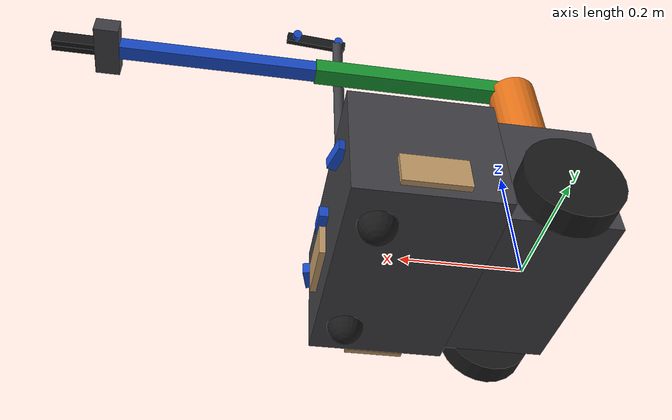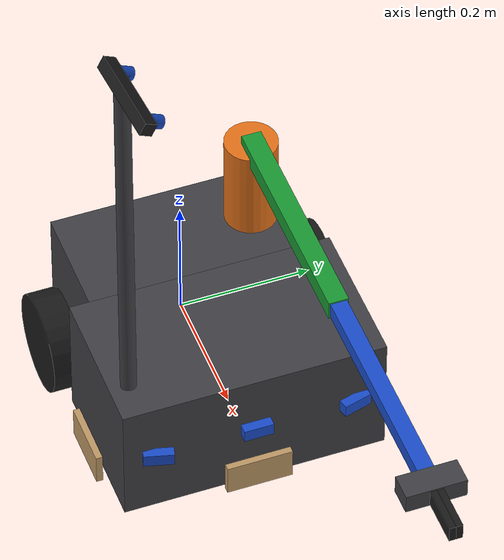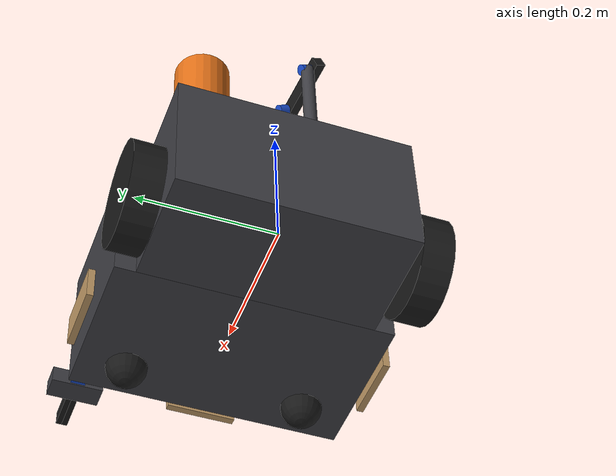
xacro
<?xml version="1.0"?>
<robot name="arturito" xmlns:xacro="http://www.ros.org/wiki/xacro">

  <xacro:property name="radio" value="0.075"/>      <!-- CFG_DIF.radioRueda: 150 mm, inflable (MEDIR con el inflado) -->
  <xacro:property name="trocha" value="0.40"/>      <!-- CFG_DIF.trocha: entre centros de rueda (MEDIR) -->
  <xacro:property name="ancho_rueda" value="0.045"/>
  <xacro:property name="eje_atras" value="0.085"/>  <!-- eje: ranura centrada en el lateral de 17 cm (R2 E3, Lateral_Ejes) -->
  <xacro:property name="largo_angosto" value="0.17"/>
  <xacro:property name="ancho_angosto" value="0.34"/>
  <xacro:property name="largo_ancho" value="0.23"/>
  <xacro:property name="ancho_ancho" value="0.40"/>
  <xacro:property name="alto_caja" value="0.20"/>   <!-- paredes de 18 cm + base y tapa de 1 cm -->
  <xacro:property name="piso" value="0.03"/>        <!-- base de la caja sobre el piso: ranura del eje de 5 cm, ~2-3 cm (MEDIR) -->
  <xacro:property name="abajo" value="${piso - radio}"/>        <!-- base de la caja respecto de base_link -->
  <xacro:property name="alto" value="${abajo + alto_caja}"/>    <!-- tapa respecto de base_link (0,23 m del piso) -->
  <xacro:property name="frente" value="${largo_angosto - eje_atras + largo_ancho}"/>  <!-- frente respecto del eje -->
  <xacro:property name="r_rueda_loca" value="0.03"/>

  <xacro:macro name="inercia_caja" params="m x y z">
    <inertial><mass value="${m}"/>
      <inertia ixx="${m*(y*y+z*z)/12}" iyy="${m*(x*x+z*z)/12}" izz="${m*(x*x+y*y)/12}" ixy="0" ixz="0" iyz="0"/>
    </inertial>
  </xacro:macro>

  <!-- base_link en el centro del eje de las ruedas de tracción (atrás), a la altura del radio -->
  <link name="base_link">
    <visual>
      <origin xyz="${largo_angosto/2 - eje_atras} 0 ${abajo + alto_caja/2}"/>
      <geometry><box size="${largo_angosto} ${ancho_angosto} ${alto_caja}"/></geometry>
      <material name="gris"><color rgba="0.25 0.25 0.27 1"/></material>
    </visual>
    <visual>
      <origin xyz="${frente - largo_ancho/2} 0 ${abajo + alto_caja/2}"/>
      <geometry><box size="${largo_ancho} ${ancho_ancho} ${alto_caja}"/></geometry>
      <material name="gris"/>
    </visual>
    <collision>
      <origin xyz="${largo_angosto/2 - eje_atras} 0 ${abajo + alto_caja/2}"/>
      <geometry><box size="${largo_angosto} ${ancho_angosto} ${alto_caja}"/></geometry>
    </collision>
    <collision>
      <origin xyz="${frente - largo_ancho/2} 0 ${abajo + alto_caja/2}"/>
      <geometry><box size="${largo_ancho} ${ancho_ancho} ${alto_caja}"/></geometry>
    </collision>
    <!-- 20 kg (MEDIR): madera, LiPo 3S, 2 motores de ~1 kg, drivers -->
    <inertial><origin xyz="0.10 0 ${abajo + alto_caja/2}"/><mass value="20.0"/>
      <inertia ixx="0.29" iyy="0.33" izz="0.53" ixy="0" ixz="0" iyz="0"/></inertial>
  </link>

  <xacro:macro name="rueda" params="lado signo">
    <link name="rueda_${lado}">
      <visual>
        <origin rpy="${pi/2} 0 0"/>
        <geometry><cylinder radius="${radio}" length="${ancho_rueda}"/></geometry>
        <material name="negro"><color rgba="0.1 0.1 0.1 1"/></material>
      </visual>
      <collision>
        <origin rpy="${pi/2} 0 0"/>
        <geometry><cylinder radius="${radio}" length="${ancho_rueda}"/></geometry>
      </collision>
      <inertial><mass value="0.65"/>  <!-- 650 g por rueda -->
        <inertia ixx="0.00102" iyy="0.00183" izz="0.00102" ixy="0" ixz="0" iyz="0"/>
      </inertial>
    </link>
    <joint name="rueda_${lado}_joint" type="continuous">
      <parent link="base_link"/>
      <child link="rueda_${lado}"/>
      <origin xyz="0 ${signo*trocha/2} 0"/>
      <axis xyz="0 1 0"/>
    </joint>
  </xacro:macro>
  <xacro:rueda lado="izq" signo="1"/>
  <xacro:rueda lado="der" signo="-1"/>

  <!-- Dos ruedas locas bajo la parte ancha (adelante), sin fricción (MEDIR la posición) -->
  <xacro:macro name="rueda_loca" params="nombre y">
    <link name="${nombre}">
      <visual><geometry><sphere radius="${r_rueda_loca}"/></geometry><material name="negro"/></visual>
      <collision><geometry><sphere radius="${r_rueda_loca}"/></geometry></collision>
      <inertial><mass value="0.1"/><inertia ixx="4e-5" iyy="4e-5" izz="4e-5" ixy="0" ixz="0" iyz="0"/></inertial>
    </link>
    <joint name="${nombre}_joint" type="fixed">
      <parent link="base_link"/>
      <child link="${nombre}"/>
      <origin xyz="${frente - 0.05} ${y} ${r_rueda_loca - radio}"/>
    </joint>
    <gazebo reference="${nombre}"><mu1>0.0</mu1><mu2>0.0</mu2></gazebo>
  </xacro:macro>
  <xacro:rueda_loca nombre="rueda_loca_izq" y="0.13"/>
  <xacro:rueda_loca nombre="rueda_loca_der" y="-0.13"/>

  <link name="imu_link"/>
  <joint name="imu_joint" type="fixed">
    <parent link="base_link"/><child link="imu_link"/><origin xyz="0.10 0 ${abajo + 0.03}"/>
  </joint>
  <link name="gps_link"/>
  <joint name="gps_joint" type="fixed">
    <parent link="base_link"/><child link="gps_link"/><origin xyz="0 -0.10 ${alto + 0.05}"/>
  </joint>

  <gazebo reference="imu_link">
    <sensor name="imu" type="imu">
      <always_on>true</always_on>
      <update_rate>50</update_rate>
      <topic>imu</topic>
      <gz_frame_id>imu_link</gz_frame_id>
    </sensor>
  </gazebo>
  <gazebo reference="gps_link">
    <sensor name="gps" type="navsat">
      <always_on>true</always_on>
      <update_rate>1</update_rate>
      <topic>navsat</topic>
      <gz_frame_id>gps_link</gz_frame_id>
    </sensor>
  </gazebo>

  <xacro:property name="z_us" value="${0.14 - radio}"/>
  <xacro:property name="z_bumper" value="${0.06 - radio}"/>
  <xacro:macro name="ultrasonido" params="nombre x y yaw">
    <link name="us_${nombre}">
      <visual><geometry><box size="0.015 0.045 0.02"/></geometry><material name="azul"/></visual>
    </link>
    <joint name="us_${nombre}_joint" type="fixed">
      <parent link="base_link"/><child link="us_${nombre}"/><origin xyz="${x} ${y} ${z_us}" rpy="0 0 ${yaw}"/>
    </joint>
    <gazebo reference="us_${nombre}">
      <sensor name="us_${nombre}" type="gpu_lidar">
        <always_on>true</always_on>
        <update_rate>10</update_rate>
        <topic>/sim/us_${nombre}</topic>
        <lidar>
          <scan>
            <horizontal><samples>5</samples><resolution>1</resolution><min_angle>-0.13</min_angle><max_angle>0.13</max_angle></horizontal>
          </scan>
          <range><min>0.02</min><max>4.0</max></range>
        </lidar>
      </sensor>
    </gazebo>
  </xacro:macro>
  <xacro:ultrasonido nombre="frente" x="${frente + 0.008}" y="0" yaw="0"/>
  <xacro:ultrasonido nombre="izq" x="${frente + 0.008}" y="0.15" yaw="${radians(15)}"/>
  <xacro:ultrasonido nombre="der" x="${frente + 0.008}" y="-0.15" yaw="${radians(-15)}"/>

  <xacro:macro name="bumper" params="nombre x y yaw">
    <link name="bumper_${nombre}">
      <visual><geometry><box size="0.01 0.10 0.05"/></geometry>
        <material name="madera"><color rgba="0.75 0.6 0.4 1"/></material></visual>
      <collision><geometry><box size="0.01 0.10 0.05"/></geometry></collision>
      <inertial><mass value="0.05"/><inertia ixx="5e-5" iyy="1e-5" izz="4e-5" ixy="0" ixz="0" iyz="0"/></inertial>
    </link>
    <joint name="bumper_${nombre}_joint" type="prismatic">
      <parent link="base_link"/><child link="bumper_${nombre}"/><origin xyz="${x} ${y} ${z_bumper}" rpy="0 0 ${yaw}"/>
      <axis xyz="1 0 0"/>
      <limit lower="-0.01" upper="0" effort="100" velocity="1"/>
      <dynamics damping="2.0"/>
    </joint>
    <gazebo reference="bumper_${nombre}_joint">
      <springStiffness>300</springStiffness>
      <springReference>0</springReference>
    </gazebo>
  </xacro:macro>
  <xacro:bumper nombre="frente" x="${frente + 0.015}" y="0" yaw="0"/>
  <xacro:bumper nombre="izq" x="${frente - largo_ancho/2}" y="${ancho_ancho/2 + 0.015}" yaw="${pi/2}"/>
  <xacro:bumper nombre="der" x="${frente - largo_ancho/2}" y="${-(ancho_ancho/2 + 0.015)}" yaw="${-pi/2}"/>

  <gazebo>
    <!-- Tracción diferencial con los límites de CFG_DIF (v 0,25 m/s, w 1 rad/s, a 0,3 m/s², alfa 1,5 rad/s²) -->
    <plugin filename="gz-sim-diff-drive-system" name="gz::sim::systems::DiffDrive">
      <left_joint>rueda_izq_joint</left_joint>
      <right_joint>rueda_der_joint</right_joint>
      <wheel_separation>${trocha}</wheel_separation>
      <wheel_radius>${radio}</wheel_radius>
      <max_linear_velocity>0.25</max_linear_velocity>
      <min_linear_velocity>-0.25</min_linear_velocity>
      <max_angular_velocity>1.0</max_angular_velocity>
      <min_angular_velocity>-1.0</min_angular_velocity>
      <max_linear_acceleration>0.3</max_linear_acceleration>
      <min_linear_acceleration>-0.3</min_linear_acceleration>
      <max_angular_acceleration>1.5</max_angular_acceleration>
      <min_angular_acceleration>-1.5</min_angular_acceleration>
      <topic>cmd_vel</topic>
      <odom_topic>odom</odom_topic>
      <tf_topic>tf</tf_topic>
      <frame_id>odom</frame_id>
      <child_frame_id>base_link</child_frame_id>
      <odom_publish_frequency>25</odom_publish_frequency>
    </plugin>
    <plugin filename="gz-sim-joint-state-publisher-system" name="gz::sim::systems::JointStatePublisher">
      <topic>joint_states</topic>
      <!-- sin esto sale en cada paso de física (1 kHz): ahogaba a los nodos de Python y la consigna del brazo llegaba
           a saltos (temblor) -->
      <update_rate>50</update_rate>
    </plugin>
  </gazebo>

  <xacro:property name="brazo_x" value="0.0"/>  <!-- sobre el eje de tracción (MEDIR) -->
  <xacro:property name="brazo_y" value="${ancho_angosto/2 - 0.06}"/>  <!-- a ~6 cm del costado izquierdo de la parte angosta -->
  <xacro:property name="k_masa" value="0.05"/>
  <xacro:property name="H1" value="0.150"/>
  <xacro:property name="L2" value="0.35022"/>
  <xacro:property name="L3" value="0.32951"/>
  <xacro:property name="largo_pinza" value="0.11"/>  <!-- muñeca P3 -> punta de los dedos (MEDIR) -->
  <xacro:property name="largo_tcp" value="0.075"/>   <!-- muñeca P3 -> punto de agarre, entre los dedos (MEDIR); = largo_herramienta de brazo_ik -->

  <xacro:macro name="barra" params="nombre largo_b ancho_b m color">
    <link name="${nombre}">
      <visual><origin xyz="${largo_b/2} 0 0"/><geometry><box size="${largo_b} ${ancho_b} ${ancho_b}"/></geometry>
        <material name="${color}"/></visual>
      <collision><origin xyz="${largo_b/2} 0 0"/><geometry><box size="${largo_b} ${ancho_b} ${ancho_b}"/></geometry></collision>
      <inertial><origin xyz="${largo_b/2} 0 0"/><mass value="${m}"/>
        <inertia ixx="${m*2*ancho_b*ancho_b/12}" iyy="${m*(largo_b*largo_b+ancho_b*ancho_b)/12}"
                 izz="${m*(largo_b*largo_b+ancho_b*ancho_b)/12}" ixy="0" ixz="0" iyz="0"/></inertial>
    </link>
  </xacro:macro>

  <link name="brazo_base"/>
  <joint name="brazo_base_joint" type="fixed">
    <parent link="base_link"/><child link="brazo_base"/><origin xyz="${brazo_x} ${brazo_y} ${alto}"/>
  </joint>

  <link name="torreta">
    <visual><origin xyz="0 0 ${H1/2}"/><geometry><cylinder radius="0.04" length="${H1}"/></geometry>
      <material name="naranja"><color rgba="0.9 0.45 0.1 1"/></material></visual>
    <collision><origin xyz="0 0 ${H1/2}"/><geometry><cylinder radius="0.04" length="${H1}"/></geometry></collision>
    <xacro:inercia_caja m="${0.8*k_masa}" x="0.08" y="0.08" z="${H1}"/>
  </link>
  <joint name="j1" type="revolute">
    <parent link="brazo_base"/><child link="torreta"/><axis xyz="0 0 1"/>
    <limit lower="${radians(-30)}" upper="${radians(90)}" effort="50" velocity="1.0"/>  <!-- = Q1_LIM (pruebas-esp32/12) -->
  </joint>

  <material name="verde"><color rgba="0.1 0.6 0.2 1"/></material>
  <material name="azul"><color rgba="0.1 0.3 0.8 1"/></material>
  <xacro:barra nombre="l2" largo_b="${L2}" ancho_b="0.03" m="${0.5*k_masa}" color="verde"/>
  <joint name="j2" type="revolute">
    <!-- eje -y: q2 positivo levanta la barra (q2 desde la horizontal, como en la E4) -->
    <parent link="torreta"/><child link="l2"/><origin xyz="0 0 ${H1}"/><axis xyz="0 -1 0"/>
    <limit lower="${radians(-25)}" upper="${radians(135)}" effort="50" velocity="1.0"/>
  </joint>
  <xacro:barra nombre="l3" largo_b="${L3}" ancho_b="0.025" m="${0.4*k_masa}" color="azul"/>
  <joint name="j3o" type="revolute">
    <parent link="l2"/><child link="l3"/><origin xyz="${L2} 0 0"/><axis xyz="0 -1 0"/>
    <limit lower="${radians(-175)}" upper="${radians(10)}" effort="50" velocity="1.0"/>
  </joint>

  <link name="muneca">
    <inertial><mass value="${0.05*k_masa}"/><inertia ixx="${1e-5*k_masa}" iyy="${1e-5*k_masa}" izz="${1e-5*k_masa}" ixy="0" ixz="0" iyz="0"/></inertial>
  </link>
  <joint name="j_nivel" type="revolute">
    <parent link="l3"/><child link="muneca"/><origin xyz="${L3} 0 0"/><axis xyz="0 -1 0"/>
    <limit lower="${-pi}" upper="${pi}" effort="50" velocity="3.0"/>
  </joint>

  <!-- Pinza: giro J4 alrededor del eje de la herramienta (horizontal) y dos dedos (servos RDS3218) -->
  <link name="pinza">
    <visual><origin xyz="0.02 0 0"/><geometry><box size="0.04 0.09 0.03"/></geometry><material name="gris"/></visual>
    <collision><origin xyz="0.02 0 0"/><geometry><box size="0.04 0.09 0.03"/></geometry></collision>
    <xacro:inercia_caja m="${0.2*k_masa}" x="0.04" y="0.09" z="0.03"/>
  </link>
  <joint name="j4" type="revolute">
    <parent link="muneca"/><child link="pinza"/><axis xyz="1 0 0"/>
    <limit lower="${radians(-90)}" upper="${radians(90)}" effort="20" velocity="3.0"/>
  </joint>
  <xacro:macro name="dedo" params="lado signo">
    <link name="dedo_${lado}">
      <visual><origin xyz="${(largo_pinza - 0.04)/2} 0 0"/><geometry><box size="${largo_pinza - 0.04} 0.01 0.025"/></geometry>
        <material name="negro"/></visual>
      <!-- sin colisión: el agarre en la simulación se hará fijando el limón a la pinza al cerrar (etapa 4) -->
      <xacro:inercia_caja m="${0.05*k_masa}" x="${largo_pinza - 0.04}" y="0.01" z="0.025"/>
    </link>
    <!-- Sin gravedad: con la pinza girada, el control por velocidad de Gazebo no sostenía el peso de los dedos (uno
         caía al tope); el servo real sí los sostiene -->
    <gazebo reference="dedo_${lado}"><turnGravityOff>true</turnGravityOff></gazebo>
    <joint name="dedo_${lado}_joint" type="prismatic">
      <!-- 0 = cerrada; 0,045 m = abierta (cada dedo: entra un limón de 56 mm). La cara interna queda a la distancia
           del prismático del eje de la herramienta -->
      <parent link="pinza"/><child link="dedo_${lado}"/><origin xyz="0.04 ${signo*0.005} 0"/><axis xyz="0 ${signo} 0"/>
      <limit lower="0" upper="0.045" effort="20" velocity="0.2"/>
    </joint>
  </xacro:macro>
  <xacro:dedo lado="izq" signo="1"/>
  <xacro:dedo lado="der" signo="-1"/>
  <!-- Punto de agarre (TCP): ahí se engancha el limón y ahí apunta /brazo/objetivo -->
  <link name="tcp"/>
  <joint name="tcp_joint" type="fixed">
    <parent link="pinza"/><child link="tcp"/><origin xyz="${largo_tcp} 0 0"/>
  </joint>

  <xacro:macro name="control_posicion" params="joint topico ini ganancia">
    <plugin filename="gz-sim-joint-position-controller-system" name="gz::sim::systems::JointPositionController">
      <joint_name>${joint}</joint_name>
      <topic>${topico}</topic>
      <use_velocity_commands>true</use_velocity_commands>
      <p_gain>${ganancia}</p_gain>
      <cmd_max>2.0</cmd_max>
      <cmd_min>-2.0</cmd_min>
      <initial_position>${ini}</initial_position>
    </plugin>
  </xacro:macro>
  <xacro:macro name="control_velocidad" params="joint topico">
    <plugin filename="gz-sim-joint-controller-system" name="gz::sim::systems::JointController">
      <joint_name>${joint}</joint_name>
      <topic>${topico}</topic>
    </plugin>
  </xacro:macro>
  <gazebo>
    <!-- Aparecen en 0 y brazo_sim las lleva al reposo -->
    <xacro:control_velocidad joint="j1" topico="/sim/j1"/>
    <xacro:control_velocidad joint="j2" topico="/sim/j2"/>
    <xacro:control_velocidad joint="j3o" topico="/sim/j3o"/>
    <xacro:control_velocidad joint="j_nivel" topico="/sim/j_nivel"/>
    <xacro:control_posicion joint="j4" topico="/sim/j4" ini="0" ganancia="10"/>
    <!-- Un tópico por dedo: dos controladores en el mismo tópico no reciben los dos -->
    <xacro:control_posicion joint="dedo_izq_joint" topico="/sim/dedo_izq" ini="0.045" ganancia="10"/>
    <xacro:control_posicion joint="dedo_der_joint" topico="/sim/dedo_der" ini="0.045" ganancia="10"/>
  </gazebo>
  <xacro:property name="mastil_x" value="${frente - 0.06}"/>          <!-- a ~6 cm del frente (MEDIR) -->
  <xacro:property name="mastil_y" value="${-(ancho_ancho/2 - 0.03)}"/> <!-- a ~3 cm del costado derecho (MEDIR) -->
  <xacro:property name="mastil_alto" value="0.85"/>                    <!-- cámara izquierda sobre el piso (MEDIR) -->
  <!-- Mástil y cámaras dibujados (solo visual): para ver si el brazo las tapa o las toca al moverse -->
  <link name="mastil">
    <visual><origin xyz="0 0 ${(mastil_alto - radio - alto)/2}"/>
      <geometry><cylinder radius="0.012" length="${mastil_alto - radio - alto}"/></geometry>
      <material name="gris"/></visual>
  </link>
  <joint name="mastil_joint" type="fixed">
    <parent link="base_link"/><child link="mastil"/><origin xyz="${mastil_x} ${mastil_y} ${alto}"/>
  </joint>
  <link name="stereo_camera_link">
    <!-- barra de las cámaras (99 mm entre ejes) y los dos "ojos", mirando por +x -->
    <visual><origin xyz="-0.015 -0.0496 0"/><geometry><box size="0.02 0.14 0.02"/></geometry>
      <material name="negro"/></visual>
    <visual><origin xyz="0.005 0 0" rpy="0 ${pi/2} 0"/><geometry><cylinder radius="0.01" length="0.02"/></geometry>
      <material name="azul"/></visual>
    <visual><origin xyz="0.005 -0.099258 0" rpy="0 ${pi/2} 0"/><geometry><cylinder radius="0.01" length="0.02"/></geometry>
      <material name="azul"/></visual>
  </link>
  <joint name="stereo_camera_joint" type="fixed">
    <parent link="base_link"/><child link="stereo_camera_link"/>
    <origin xyz="${mastil_x} ${mastil_y} ${mastil_alto - radio}" rpy="0 ${radians(28)} ${radians(94)}"/>
  </joint>
  <link name="camera"/>
  <joint name="camera_optical_joint" type="fixed">
    <parent link="stereo_camera_link"/><child link="camera"/><origin rpy="${-pi/2} 0 ${-pi/2}"/>
  </joint>

  <xacro:arg name="camaras" default="false"/>
  <xacro:macro name="camara" params="nombre topico marco y">
    <sensor name="${nombre}" type="camera">
      <pose>0 ${y} 0 0 0 0</pose>
      <always_on>true</always_on>
      <update_rate>10</update_rate>
      <topic>${topico}</topic>
      <gz_frame_id>${marco}</gz_frame_id>
      <camera>
        <horizontal_fov>${2*atan(320/1076.537901)}</horizontal_fov>
        <image><width>640</width><height>480</height><format>R8G8B8</format></image>
        <clip><near>0.05</near><far>10</far></clip>
      </camera>
    </sensor>
  </xacro:macro>
  <xacro:if value="$(arg camaras)">
    <gazebo reference="stereo_camera_link">
      <xacro:camara nombre="cam_izq" topico="/left/image_rect" marco="camera" y="0"/>
      <xacro:camara nombre="cam_der" topico="/right/image_rect" marco="camera_der" y="-0.099258"/>
    </gazebo>
  </xacro:if>

</robot>
